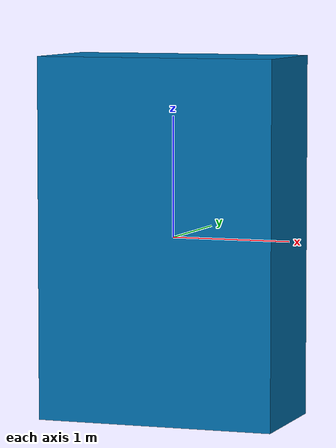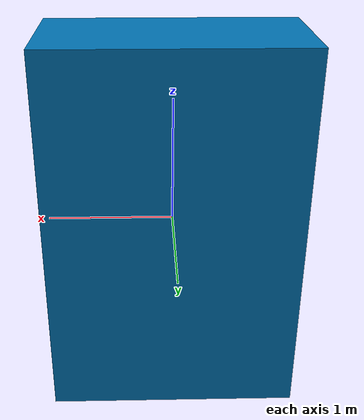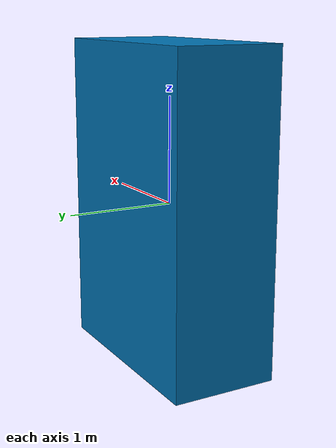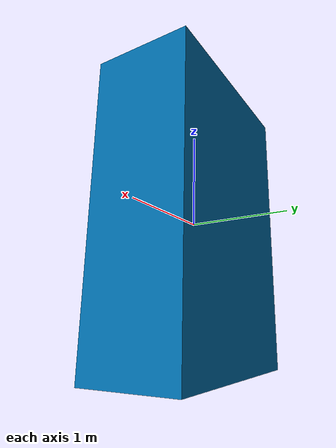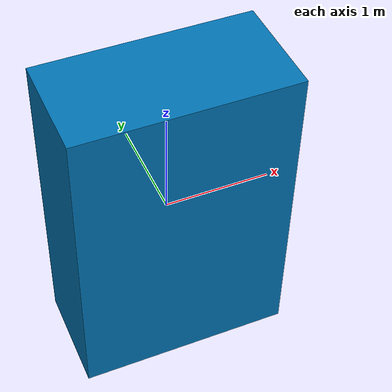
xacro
<?xml version="1.0"?>
<robot xmlns:xacro="http://www.ros.org/wiki/xacro" name="USV">

  <link name="imu_link"/>
  <link name="odom_link"/>
  <link name="radar_link"/>

  <link name="world"></link>

  <joint name="world_to_base" type="fixed">
      <parent link="world" />
      <child link="base_link" />
      <origin  rpy="0 0 0" xyz="0 0 0" />
  </joint>

  <link name="base_link">
      <visual>
          <origin xyz="0 0 0" rpy="0 0 0"/>
          <geometry>
              <box size="2 1 3" />
          </geometry>
      </visual>
  </link>

  <joint name="base_to_imu" type="fixed">
    <parent link="base_link"/>
    <child link="imu_link"/>
    <origin xyz="0 0 0.2" rpy="0 0 0"/>
  </joint>

  <joint name="base_to_odom" type="fixed">
    <parent link="base_link"/>
    <child link="odom_link"/>
    <origin xyz="0 0 0.1" rpy="0 0 0"/>
  </joint>

  <joint name="base_to_radar" type="fixed">
    <parent link="base_link"/>
    <child link="radar_link"/>
    <origin xyz="0.1 0 0.2" rpy="0 0 0"/>
  </joint>
</robot>
